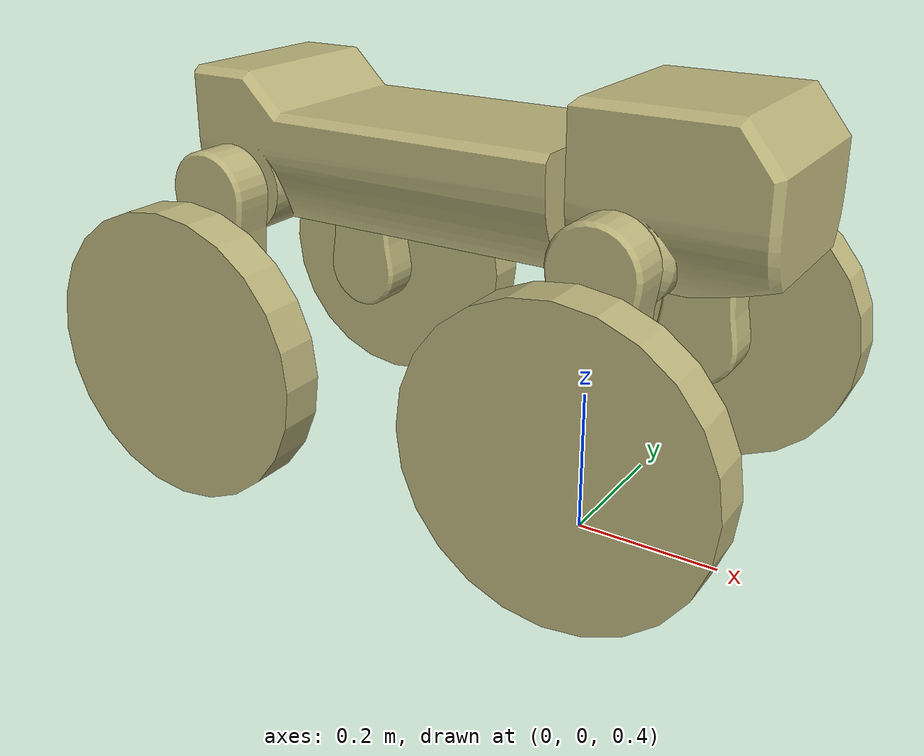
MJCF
<mujoco model="walter">

    <!--Defining the assets for the model-->
  <asset>
    <texture type="skybox" builtin="gradient" rgb1="1 1 1" rgb2=".63 .8 1" width="256" height="256"/>
    <mesh name = "thigh_mesh" file = "assets/Thigh.stl"/>
    <mesh name = "shin_mesh" file = "assets/Shin.stl"/>
    <mesh name = "wheel_mesh" file = "assets/Wheel.stl"/>
    <mesh name = "body_mesh" file = "assets/Body.stl"/>
    <mesh name = "head_mesh" file = "assets/Head.stl"/>
  </asset>

  <!--Defining default classes for components-->
  <default>
    <geom rgba="0.73 0.7 0.48 1"/>
    <!-- Default thigh class -->
    <default class="thigh">
        <geom type="mesh" mesh="thigh_mesh" mass = "3" />
    </default>

    <!-- Default hip class -->
    <default class = "hip">
        <joint armature = "0.02" damping = "2"/>
    </default>

    <!-- Default shin class -->
    <default class="shin">
        <geom type="cylinder" size = "0.2 0.03" mass = "6" pos = "0 0 0.05" friction = "1 0.005 0.005" solref="0.1 0.5"/>
    </default>

    <!-- Default knee class -->
    <default class = "knee">
        <joint armature = "0.02" damping = "2"/>
    </default>

    <!-- Default wheel class -->
    <default class="wheel">
        <geom type="mesh" mesh = "wheel_mesh" friction = "0.4 0.005 0.005" solref="0.1 1" mass = "3"/>
    </default>

    <!-- Default wheel joint class-->
    <default class = "wheel_joint">
        <joint type="hinge" axis="0 0 1" damping="0.08"/>
    </default>

    <!-- Default actuator classes -->
    <default class="knee_actuator">
        <motor />
    </default>

    <default class="hip_actuator">
        <motor />
    </default>

    <default class="wheel_actuator">
        <motor/>
    </default>

  </default>

  <!-- WALTER MODEL -->
    <worldbody>
        <!-- Rear Body Section -->
        <body name="body" pos="0 0 0.9">
            <joint type="free"/>
            <geom type="mesh" mesh = "body_mesh" mass="35" />
            <!-- Add rear legs here -->

            <!-- Back left thigh -->
             <body name = "bl_thigh" pos = "-0.47 0.125 -0.055" quat = "0 0 1 1">
                <joint name="bl_hip" class = "hip" type="hinge" axis = "0 0 1" />
                <geom class="thigh"/>
                <!-- Back left shin -->
                <body name = "bl_shin" pos = "0 -0.2 0.076" >
                    <joint name="bl_knee" class = "knee" type="hinge" axis = "0 0 1"/>
                    <geom class="shin"/>

                </body>
             </body>

            <!-- Back right thigh -->
            <body name = "br_thigh" pos = "-0.47 -0.125 -0.055" quat = "1 1 0 0">
                <joint name="br_hip" class = "hip" type="hinge" axis = "0 0 1" />
                <geom class="thigh"/>
                <!-- Back right shin -->
                <body name = "br_shin" pos = "0 -0.2 0.076" >
                    <joint name="br_knee" class = "knee" type="hinge" axis = "0 0 1"/>
                    <geom class="shin"/>

                </body>
             </body>

            <!-- Front Body Section -->
            <body name="head" pos="0.01 0 0">
                <joint name="body_joint" type="hinge" axis = "1 0 0" stiffness = "0.05" range = "-0.5 0.5"/>
                <geom type="mesh" mesh = "head_mesh" mass = "17"/>

                <!-- Add front legs here -->
                 <!-- Front left thigh -->
                 <body name = "fl_thigh" pos = "0.085 0.125 -0.055" quat = "0 0 1 1">
                    <joint name="fl_hip" class = "hip" type="hinge" axis = "0 0 1" />
                    <geom class="thigh"/>
                    <!-- Back left shin -->
                    <body name = "fl_shin" pos = "0 -0.2 0.076" >
                        <joint name="fl_knee" class = "knee" type="hinge" axis = "0 0 1"/>
                        <geom class="shin"/>

                    </body>
                 </body>

                <!-- Front right thigh -->
                <body name = "fr_thigh" pos = "0.085 -0.125 -0.055" quat = "1 1 0 0">
                    <joint name="fr_hip" class = "hip" type="hinge" axis = "0 0 1" />
                    <geom class="thigh"/>
                    <!-- Back left shin -->
                    <body name = "fr_shin" pos = "0 -0.2 0.076" >
                        <joint name="fr_knee" class = "knee" type="hinge" axis = "0 0 1"/>
                        <geom class="shin"/>

                    </body>
                </body>
            </body>
            </body>
        </worldbody>

    <!-- Defining the actuators -->
    <actuator>
        <motor joint="fr_hip" class = "hip_actuator"/>
        <motor joint="fr_knee" class = "knee_actuator"/>
        <motor joint="fl_hip" class = "hip_actuator"/>
        <motor joint="fl_knee" class = "knee_actuator"/>
        <motor joint="br_hip" class = "hip_actuator"/>
        <motor joint="br_knee" class = "knee_actuator"/>
        <motor joint="bl_hip" class = "hip_actuator"/>
        <motor joint="bl_knee" class = "knee_actuator"/>
    </actuator>
</mujoco>
